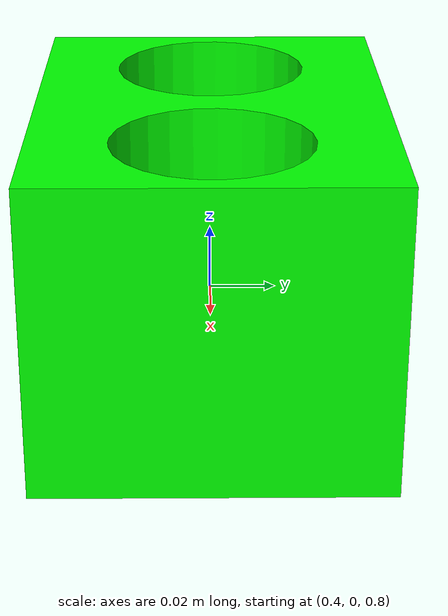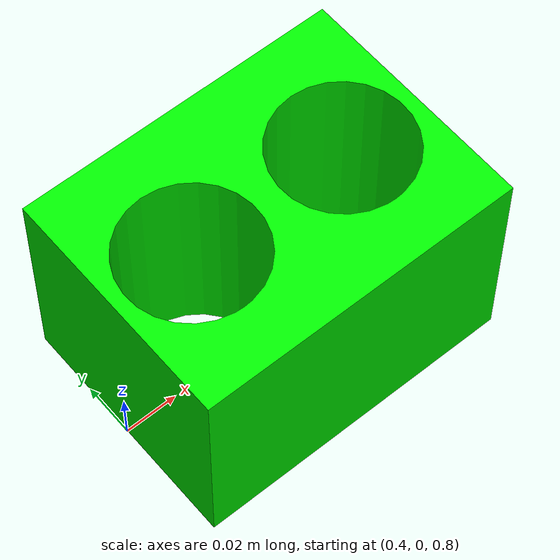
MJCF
<mujoco model="circle">
  <asset>
    <mesh name="circle_visual" file="meshes/circle.stl"/>
    <mesh name="circle_collision_0" file="meshes/circle_collision_0.stl"/>
    <mesh name="circle_collision_1" file="meshes/circle_collision_1.stl"/>
    <mesh name="circle_collision_2" file="meshes/circle_collision_2.stl"/>
    <mesh name="circle_collision_3" file="meshes/circle_collision_3.stl"/>
    <mesh name="circle_collision_4" file="meshes/circle_collision_4.stl"/>
    <mesh name="circle_collision_5" file="meshes/circle_collision_5.stl"/>
    <mesh name="circle_collision_6" file="meshes/circle_collision_6.stl"/>
    <mesh name="circle_collision_7" file="meshes/circle_collision_7.stl"/>
    <mesh name="circle_collision_8" file="meshes/circle_collision_8.stl"/>
    <mesh name="circle_collision_9" file="meshes/circle_collision_9.stl"/>
    <mesh name="circle_collision_10" file="meshes/circle_collision_10.stl"/>
    <mesh name="circle_collision_11" file="meshes/circle_collision_11.stl"/>
    <mesh name="circle_collision_12" file="meshes/circle_collision_12.stl"/>
    <mesh name="circle_collision_13" file="meshes/circle_collision_13.stl"/>
    <mesh name="circle_collision_14" file="meshes/circle_collision_14.stl"/>
    <mesh name="circle_collision_15" file="meshes/circle_collision_15.stl"/>
    <mesh name="circle_collision_16" file="meshes/circle_collision_16.stl"/>
    <mesh name="circle_collision_17" file="meshes/circle_collision_17.stl"/>
    <mesh name="circle_collision_18" file="meshes/circle_collision_18.stl"/>
    <mesh name="circle_collision_19" file="meshes/circle_collision_19.stl"/>
    <mesh name="circle_collision_20" file="meshes/circle_collision_20.stl"/>
    <mesh name="circle_collision_21" file="meshes/circle_collision_21.stl"/>
    <mesh name="circle_collision_22" file="meshes/circle_collision_22.stl"/>
    <mesh name="circle_collision_23" file="meshes/circle_collision_23.stl"/>
    <mesh name="circle_collision_24" file="meshes/circle_collision_24.stl"/>
    <mesh name="circle_collision_25" file="meshes/circle_collision_25.stl"/>
    <mesh name="circle_collision_26" file="meshes/circle_collision_26.stl"/>
    <mesh name="circle_collision_27" file="meshes/circle_collision_27.stl"/>
    <mesh name="circle_collision_28" file="meshes/circle_collision_28.stl"/>
    <mesh name="circle_collision_29" file="meshes/circle_collision_29.stl"/>
    <mesh name="circle_collision_30" file="meshes/circle_collision_30.stl"/>
    <mesh name="circle_collision_31" file="meshes/circle_collision_31.stl"/>
  </asset>
  <worldbody>

      <body name="circle"  pos="0.46 0 0.8">
        <geom quat="0.707107 0.707107 0 0" mesh="circle_visual" type="mesh" contype="0" conaffinity="0" solimp="0.998 0.998 0.001" solref="0.001 1" density="100" friction="0.95 0.3 0.9" group="2" rgba='0 1 0 1'/>
        <geom quat="0.707107 0.707107 0 0" mesh="circle_collision_0" type="mesh" group="3"/>
        <geom quat="0.707107 0.707107 0 0" mesh="circle_collision_1" type="mesh" group="3"/>
        <geom quat="0.707107 0.707107 0 0" mesh="circle_collision_2" type="mesh" group="3"/>
        <geom quat="0.707107 0.707107 0 0" mesh="circle_collision_3" type="mesh" group="3"/>
        <geom quat="0.707107 0.707107 0 0" mesh="circle_collision_4" type="mesh" group="3"/>
        <geom quat="0.707107 0.707107 0 0" mesh="circle_collision_5" type="mesh" group="3"/>
        <geom quat="0.707107 0.707107 0 0" mesh="circle_collision_6" type="mesh" group="3"/>
        <geom quat="0.707107 0.707107 0 0" mesh="circle_collision_7" type="mesh" group="3"/>
        <geom quat="0.707107 0.707107 0 0" mesh="circle_collision_8" type="mesh" group="3"/>
        <geom quat="0.707107 0.707107 0 0" mesh="circle_collision_9" type="mesh" group="3"/>
        <geom quat="0.707107 0.707107 0 0" mesh="circle_collision_10" type="mesh" group="3"/>
        <geom quat="0.707107 0.707107 0 0" mesh="circle_collision_11" type="mesh" group="3"/>
        <geom quat="0.707107 0.707107 0 0" mesh="circle_collision_12" type="mesh" group="3"/>
        <geom quat="0.707107 0.707107 0 0" mesh="circle_collision_13" type="mesh" group="3"/>
        <geom quat="0.707107 0.707107 0 0" mesh="circle_collision_14" type="mesh" group="3"/>
        <geom quat="0.707107 0.707107 0 0" mesh="circle_collision_15" type="mesh" group="3"/>
        <geom quat="0.707107 0.707107 0 0" mesh="circle_collision_16" type="mesh" group="3"/>
        <geom quat="0.707107 0.707107 0 0" mesh="circle_collision_17" type="mesh" group="3"/>
        <geom quat="0.707107 0.707107 0 0" mesh="circle_collision_18" type="mesh" group="3"/>
        <geom quat="0.707107 0.707107 0 0" mesh="circle_collision_19" type="mesh" group="3"/>
        <geom quat="0.707107 0.707107 0 0" mesh="circle_collision_20" type="mesh" group="3"/>
        <geom quat="0.707107 0.707107 0 0" mesh="circle_collision_21" type="mesh" group="3"/>
        <geom quat="0.707107 0.707107 0 0" mesh="circle_collision_22" type="mesh" group="3"/>
        <geom quat="0.707107 0.707107 0 0" mesh="circle_collision_23" type="mesh" group="3"/>
        <geom quat="0.707107 0.707107 0 0" mesh="circle_collision_24" type="mesh" group="3"/>
        <geom quat="0.707107 0.707107 0 0" mesh="circle_collision_25" type="mesh" group="3"/>
        <geom quat="0.707107 0.707107 0 0" mesh="circle_collision_26" type="mesh" group="3"/>
        <geom quat="0.707107 0.707107 0 0" mesh="circle_collision_27" type="mesh" group="3"/>
        <geom quat="0.707107 0.707107 0 0" mesh="circle_collision_28" type="mesh" group="3"/>
        <geom quat="0.707107 0.707107 0 0" mesh="circle_collision_29" type="mesh" group="3"/>
        <geom quat="0.707107 0.707107 0 0" mesh="circle_collision_30" type="mesh" group="3"/>
        <geom quat="0.707107 0.707107 0 0" mesh="circle_collision_31" type="mesh" group="3"/>
      </body>
        <site rgba="0 0 0 0" size="0.005" pos="0 0 -0.02" name="bottom_site"/>
        <site rgba="0 0 0 0" size="0.005" pos="0 0 0.08" name="top_site"/>
        <site rgba="0 0 0 0" size="0.005" pos="0.07 0.07 0" name="horizontal_radius_site"/>

  </worldbody>
</mujoco>
